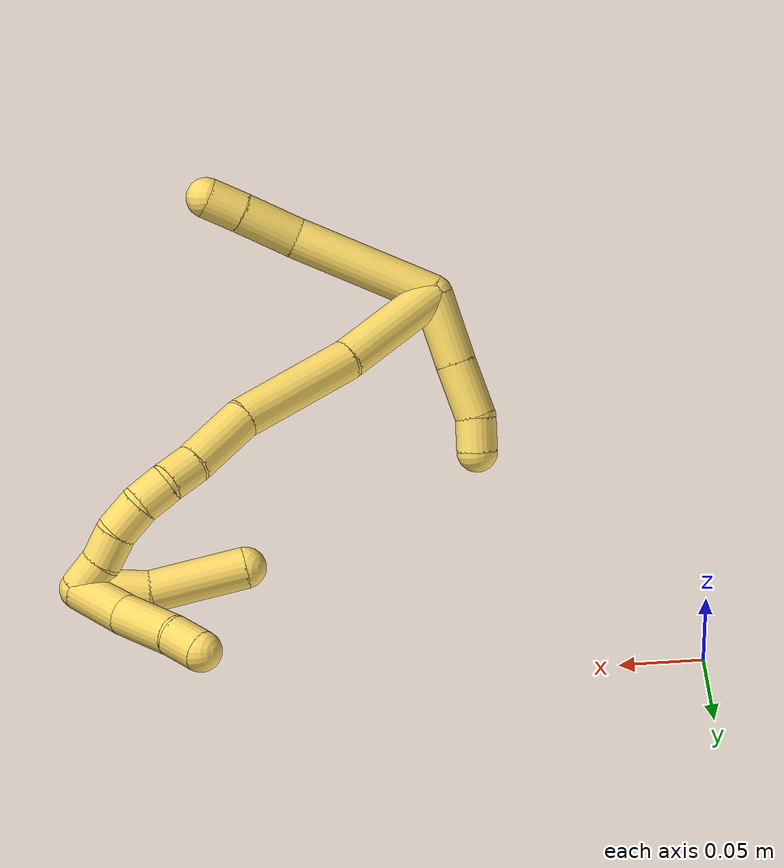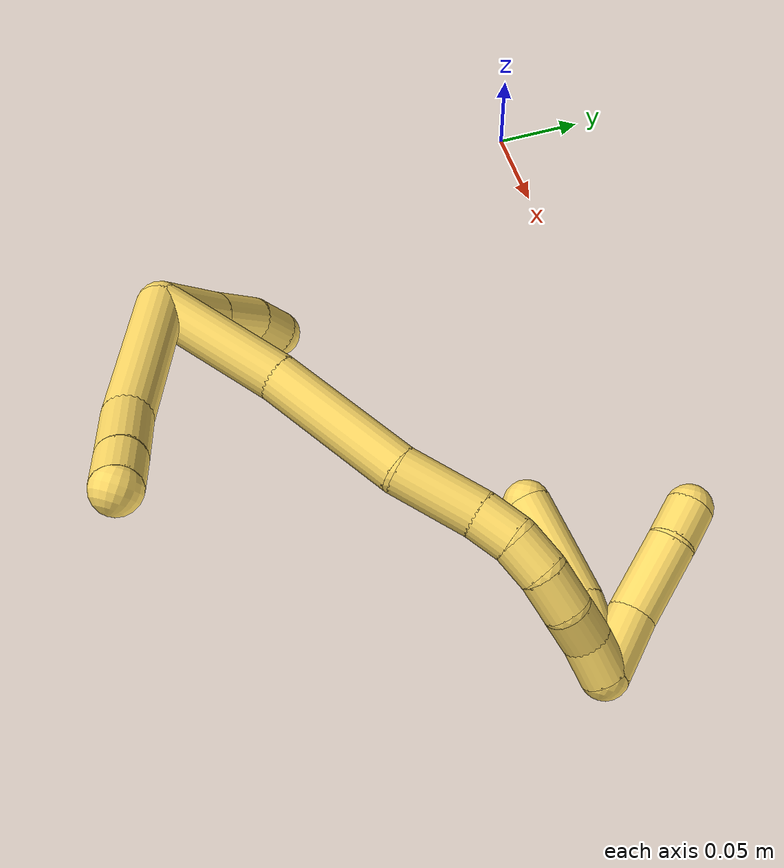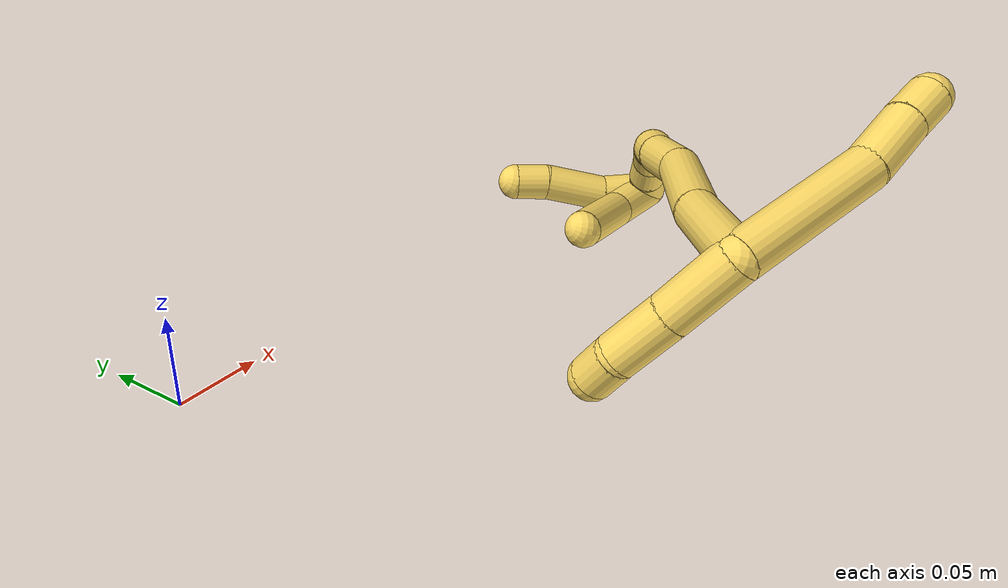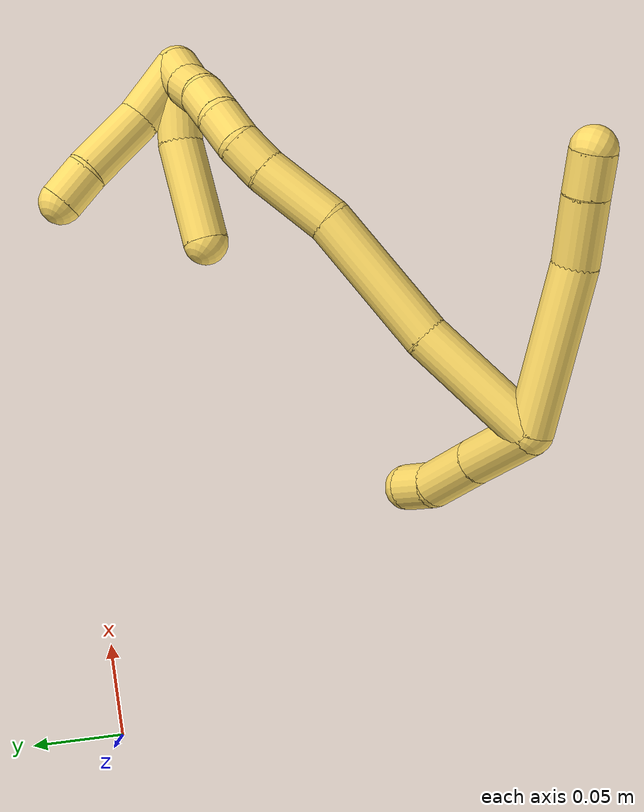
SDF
<sdf version="1.7">
 <world name="default">
  <model name="5">
   <static>0</static>
   <link name="5">
    <collision name="collision-cylinder-e_1_2_8">
     <pose>0.027618 -0.00882 -0.034468 2.89107 0.660091 2.43711</pose>
     <geometry><cylinder><radius>0.0125</radius><length>0.090079</length></cylinder></geometry>
     <surface>
      <friction><ode><mu>1.16</mu><mu2>1.16</mu2><slip1>0</slip1><slip2>0</slip2></ode></friction>
      <contact><ode><kp>1e+06</kp><kd>1</kd><max_vel>0</max_vel><min_depth>0.001</min_depth></ode></contact>
     </surface>
    </collision>
    <visual name="visual-cylinder-e_1_2_8">
     <pose>0.027618 -0.00882 -0.034468 2.89107 0.660091 2.43711</pose>
     <geometry><cylinder><radius>0.0125</radius><length>0.090079</length></cylinder></geometry>
     <material><ambient>1 0.858824 0.4 1</ambient></material>
    </visual>
    <collision name="collision-cylinder-e_2_8_9">
     <pose>0.069244 -0.020995 -0.080372 2.85632 0.865838 2.53902</pose>
     <geometry><cylinder><radius>0.0125</radius><length>0.036785</length></cylinder></geometry>
     <surface>
      <friction><ode><mu>1.16</mu><mu2>1.16</mu2><slip1>0</slip1><slip2>0</slip2></ode></friction>
      <contact><ode><kp>1e+06</kp><kd>1</kd><max_vel>0</max_vel><min_depth>0.001</min_depth></ode></contact>
     </surface>
    </collision>
    <visual name="visual-cylinder-e_2_8_9">
     <pose>0.069244 -0.020995 -0.080372 2.85632 0.865838 2.53902</pose>
     <geometry><cylinder><radius>0.0125</radius><length>0.036785</length></cylinder></geometry>
     <material><ambient>1 0.858824 0.4 1</ambient></material>
    </visual>
    <collision name="collision-cylinder-e_3_9_6">
     <pose>0.091697 -0.026358 -0.099455 2.88467 0.818317 2.56257</pose>
     <geometry><cylinder><radius>0.0125</radius><length>0.023136</length></cylinder></geometry>
     <surface>
      <friction><ode><mu>1.16</mu><mu2>1.16</mu2><slip1>0</slip1><slip2>0</slip2></ode></friction>
      <contact><ode><kp>1e+06</kp><kd>1</kd><max_vel>0</max_vel><min_depth>0.001</min_depth></ode></contact>
     </surface>
    </collision>
    <visual name="visual-cylinder-e_3_9_6">
     <pose>0.091697 -0.026358 -0.099455 2.88467 0.818317 2.56257</pose>
     <geometry><cylinder><radius>0.0125</radius><length>0.023136</length></cylinder></geometry>
     <material><ambient>1 0.858824 0.4 1</ambient></material>
    </visual>
    <collision name="collision-cylinder-e_1_2_10">
     <pose>-0.010423 0.018306 0.005761 -1.26591 -0.497542 0.368517</pose>
     <geometry><cylinder><radius>0.0125</radius><length>0.043677</length></cylinder></geometry>
     <surface>
      <friction><ode><mu>1.16</mu><mu2>1.16</mu2><slip1>0</slip1><slip2>0</slip2></ode></friction>
      <contact><ode><kp>1e+06</kp><kd>1</kd><max_vel>0</max_vel><min_depth>0.001</min_depth></ode></contact>
     </surface>
    </collision>
    <visual name="visual-cylinder-e_1_2_10">
     <pose>-0.010423 0.018306 0.005761 -1.26591 -0.497542 0.368517</pose>
     <geometry><cylinder><radius>0.0125</radius><length>0.043677</length></cylinder></geometry>
     <material><ambient>1 0.858824 0.4 1</ambient></material>
    </visual>
    <collision name="collision-cylinder-e_2_10_11">
     <pose>-0.029056 0.051115 0.016761 -1.22412 -0.489258 0.346952</pose>
     <geometry><cylinder><radius>0.0125</radius><length>0.034942</length></cylinder></geometry>
     <surface>
      <friction><ode><mu>1.16</mu><mu2>1.16</mu2><slip1>0</slip1><slip2>0</slip2></ode></friction>
      <contact><ode><kp>1e+06</kp><kd>1</kd><max_vel>0</max_vel><min_depth>0.001</min_depth></ode></contact>
     </surface>
    </collision>
    <visual name="visual-cylinder-e_2_10_11">
     <pose>-0.029056 0.051115 0.016761 -1.22412 -0.489258 0.346952</pose>
     <geometry><cylinder><radius>0.0125</radius><length>0.034942</length></cylinder></geometry>
     <material><ambient>1 0.858824 0.4 1</ambient></material>
    </visual>
    <collision name="collision-cylinder-e_3_11_5">
     <pose>-0.040995 0.075631 0.022398 -1.53115 -0.356131 0.342558</pose>
     <geometry><cylinder><radius>0.0125</radius><length>0.021381</length></cylinder></geometry>
     <surface>
      <friction><ode><mu>1.16</mu><mu2>1.16</mu2><slip1>0</slip1><slip2>0</slip2></ode></friction>
      <contact><ode><kp>1e+06</kp><kd>1</kd><max_vel>0</max_vel><min_depth>0.001</min_depth></ode></contact>
     </surface>
    </collision>
    <visual name="visual-cylinder-e_3_11_5">
     <pose>-0.040995 0.075631 0.022398 -1.53115 -0.356131 0.342558</pose>
     <geometry><cylinder><radius>0.0125</radius><length>0.021381</length></cylinder></geometry>
     <material><ambient>1 0.858824 0.4 1</ambient></material>
    </visual>
    <collision name="collision-cylinder-e_1_2_12">
     <pose>0.021828 0.027144 -0.010676 -1.94552 0.642456 -0.908711</pose>
     <geometry><cylinder><radius>0.0125</radius><length>0.072862</length></cylinder></geometry>
     <surface>
      <friction><ode><mu>1.16</mu><mu2>1.16</mu2><slip1>0</slip1><slip2>0</slip2></ode></friction>
      <contact><ode><kp>1e+06</kp><kd>1</kd><max_vel>0</max_vel><min_depth>0.001</min_depth></ode></contact>
     </surface>
    </collision>
    <visual name="visual-cylinder-e_1_2_12">
     <pose>0.021828 0.027144 -0.010676 -1.94552 0.642456 -0.908711</pose>
     <geometry><cylinder><radius>0.0125</radius><length>0.072862</length></cylinder></geometry>
     <material><ambient>1 0.858824 0.4 1</ambient></material>
    </visual>
    <collision name="collision-cylinder-e_2_12_13">
     <pose>0.068851 0.080395 -0.036578 -2.09877 0.694906 -1.125</pose>
     <geometry><cylinder><radius>0.0125</radius><length>0.078694</length></cylinder></geometry>
     <surface>
      <friction><ode><mu>1.16</mu><mu2>1.16</mu2><slip1>0</slip1><slip2>0</slip2></ode></friction>
      <contact><ode><kp>1e+06</kp><kd>1</kd><max_vel>0</max_vel><min_depth>0.001</min_depth></ode></contact>
     </surface>
    </collision>
    <visual name="visual-cylinder-e_2_12_13">
     <pose>0.068851 0.080395 -0.036578 -2.09877 0.694906 -1.125</pose>
     <geometry><cylinder><radius>0.0125</radius><length>0.078694</length></cylinder></geometry>
     <material><ambient>1 0.858824 0.4 1</ambient></material>
    </visual>
    <collision name="collision-cylinder-e_3_13_14">
     <pose>0.106068 0.123877 -0.057018 -1.86237 0.58529 -0.769615</pose>
     <geometry><cylinder><radius>0.0125</radius><length>0.043525</length></cylinder></geometry>
     <surface>
      <friction><ode><mu>1.16</mu><mu2>1.16</mu2><slip1>0</slip1><slip2>0</slip2></ode></friction>
      <contact><ode><kp>1e+06</kp><kd>1</kd><max_vel>0</max_vel><min_depth>0.001</min_depth></ode></contact>
     </surface>
    </collision>
    <visual name="visual-cylinder-e_3_13_14">
     <pose>0.106068 0.123877 -0.057018 -1.86237 0.58529 -0.769615</pose>
     <geometry><cylinder><radius>0.0125</radius><length>0.043525</length></cylinder></geometry>
     <material><ambient>1 0.858824 0.4 1</ambient></material>
    </visual>
    <collision name="collision-cylinder-e_4_14_15">
     <pose>0.124061 0.148965 -0.065911 -2.0158 0.609799 -0.925304</pose>
     <geometry><cylinder><radius>0.0125</radius><length>0.020849</length></cylinder></geometry>
     <surface>
      <friction><ode><mu>1.16</mu><mu2>1.16</mu2><slip1>0</slip1><slip2>0</slip2></ode></friction>
      <contact><ode><kp>1e+06</kp><kd>1</kd><max_vel>0</max_vel><min_depth>0.001</min_depth></ode></contact>
     </surface>
    </collision>
    <visual name="visual-cylinder-e_4_14_15">
     <pose>0.124061 0.148965 -0.065911 -2.0158 0.609799 -0.925304</pose>
     <geometry><cylinder><radius>0.0125</radius><length>0.020849</length></cylinder></geometry>
     <material><ambient>1 0.858824 0.4 1</ambient></material>
    </visual>
    <collision name="collision-cylinder-e_5_15_16">
     <pose>0.133531 0.164428 -0.075007 -2.18091 0.354512 -0.662285</pose>
     <geometry><cylinder><radius>0.0125</radius><length>0.020165</length></cylinder></geometry>
     <surface>
      <friction><ode><mu>1.16</mu><mu2>1.16</mu2><slip1>0</slip1><slip2>0</slip2></ode></friction>
      <contact><ode><kp>1e+06</kp><kd>1</kd><max_vel>0</max_vel><min_depth>0.001</min_depth></ode></contact>
     </surface>
    </collision>
    <visual name="visual-cylinder-e_5_15_16">
     <pose>0.133531 0.164428 -0.075007 -2.18091 0.354512 -0.662285</pose>
     <geometry><cylinder><radius>0.0125</radius><length>0.020165</length></cylinder></geometry>
     <material><ambient>1 0.858824 0.4 1</ambient></material>
    </visual>
    <collision name="collision-cylinder-e_6_16_17">
     <pose>0.137663 0.181124 -0.086679 -2.1809 0.057819 -0.110884</pose>
     <geometry><cylinder><radius>0.0125</radius><length>0.021867</length></cylinder></geometry>
     <surface>
      <friction><ode><mu>1.16</mu><mu2>1.16</mu2><slip1>0</slip1><slip2>0</slip2></ode></friction>
      <contact><ode><kp>1e+06</kp><kd>1</kd><max_vel>0</max_vel><min_depth>0.001</min_depth></ode></contact>
     </surface>
    </collision>
    <visual name="visual-cylinder-e_6_16_17">
     <pose>0.137663 0.181124 -0.086679 -2.1809 0.057819 -0.110884</pose>
     <geometry><cylinder><radius>0.0125</radius><length>0.021867</length></cylinder></geometry>
     <material><ambient>1 0.858824 0.4 1</ambient></material>
    </visual>
    <collision name="collision-cylinder-e_7_17_18">
     <pose>0.136415 0.198981 -0.097625 -2.05542 -0.184484 0.304126</pose>
     <geometry><cylinder><radius>0.0125</radius><length>0.020488</length></cylinder></geometry>
     <surface>
      <friction><ode><mu>1.16</mu><mu2>1.16</mu2><slip1>0</slip1><slip2>0</slip2></ode></friction>
      <contact><ode><kp>1e+06</kp><kd>1</kd><max_vel>0</max_vel><min_depth>0.001</min_depth></ode></contact>
     </surface>
    </collision>
    <visual name="visual-cylinder-e_7_17_18">
     <pose>0.136415 0.198981 -0.097625 -2.05542 -0.184484 0.304126</pose>
     <geometry><cylinder><radius>0.0125</radius><length>0.020488</length></cylinder></geometry>
     <material><ambient>1 0.858824 0.4 1</ambient></material>
    </visual>
    <collision name="collision-cylinder-e_8_18_1">
     <pose>0.133785 0.216448 -0.108821 -2.22079 -0.069758 0.140482</pose>
     <geometry><cylinder><radius>0.0125</radius><length>0.021549</length></cylinder></geometry>
     <surface>
      <friction><ode><mu>1.16</mu><mu2>1.16</mu2><slip1>0</slip1><slip2>0</slip2></ode></friction>
      <contact><ode><kp>1e+06</kp><kd>1</kd><max_vel>0</max_vel><min_depth>0.001</min_depth></ode></contact>
     </surface>
    </collision>
    <visual name="visual-cylinder-e_8_18_1">
     <pose>0.133785 0.216448 -0.108821 -2.22079 -0.069758 0.140482</pose>
     <geometry><cylinder><radius>0.0125</radius><length>0.021549</length></cylinder></geometry>
     <material><ambient>1 0.858824 0.4 1</ambient></material>
    </visual>
    <collision name="collision-cylinder-e_1_1_19">
     <pose>0.129997 0.231067 -0.099085 -0.357308 -0.17344 0.031396</pose>
     <geometry><cylinder><radius>0.0125</radius><length>0.035198</length></cylinder></geometry>
     <surface>
      <friction><ode><mu>1.16</mu><mu2>1.16</mu2><slip1>0</slip1><slip2>0</slip2></ode></friction>
      <contact><ode><kp>1e+06</kp><kd>1</kd><max_vel>0</max_vel><min_depth>0.001</min_depth></ode></contact>
     </surface>
    </collision>
    <visual name="visual-cylinder-e_1_1_19">
     <pose>0.129997 0.231067 -0.099085 -0.357308 -0.17344 0.031396</pose>
     <geometry><cylinder><radius>0.0125</radius><length>0.035198</length></cylinder></geometry>
     <material><ambient>1 0.858824 0.4 1</ambient></material>
    </visual>
    <collision name="collision-cylinder-e_2_19_20">
     <pose>0.128474 0.242505 -0.0623 -0.25587 0.071186 -0.009161</pose>
     <geometry><cylinder><radius>0.0125</radius><length>0.04258</length></cylinder></geometry>
     <surface>
      <friction><ode><mu>1.16</mu><mu2>1.16</mu2><slip1>0</slip1><slip2>0</slip2></ode></friction>
      <contact><ode><kp>1e+06</kp><kd>1</kd><max_vel>0</max_vel><min_depth>0.001</min_depth></ode></contact>
     </surface>
    </collision>
    <visual name="visual-cylinder-e_2_19_20">
     <pose>0.128474 0.242505 -0.0623 -0.25587 0.071186 -0.009161</pose>
     <geometry><cylinder><radius>0.0125</radius><length>0.04258</length></cylinder></geometry>
     <material><ambient>1 0.858824 0.4 1</ambient></material>
    </visual>
    <collision name="collision-cylinder-e_3_20_4">
     <pose>0.12892 0.251642 -0.031356 -0.347122 -0.096289 0.016894</pose>
     <geometry><cylinder><radius>0.0125</radius><length>0.022222</length></cylinder></geometry>
     <surface>
      <friction><ode><mu>1.16</mu><mu2>1.16</mu2><slip1>0</slip1><slip2>0</slip2></ode></friction>
      <contact><ode><kp>1e+06</kp><kd>1</kd><max_vel>0</max_vel><min_depth>0.001</min_depth></ode></contact>
     </surface>
    </collision>
    <visual name="visual-cylinder-e_3_20_4">
     <pose>0.12892 0.251642 -0.031356 -0.347122 -0.096289 0.016894</pose>
     <geometry><cylinder><radius>0.0125</radius><length>0.022222</length></cylinder></geometry>
     <material><ambient>1 0.858824 0.4 1</ambient></material>
    </visual>
    <collision name="collision-cylinder-e_1_1_21">
     <pose>0.120661 0.221679 -0.098977 0.200683 -0.638118 -0.066494</pose>
     <geometry><cylinder><radius>0.0125</radius><length>0.041541</length></cylinder></geometry>
     <surface>
      <friction><ode><mu>1.16</mu><mu2>1.16</mu2><slip1>0</slip1><slip2>0</slip2></ode></friction>
      <contact><ode><kp>1e+06</kp><kd>1</kd><max_vel>0</max_vel><min_depth>0.001</min_depth></ode></contact>
     </surface>
    </collision>
    <visual name="visual-cylinder-e_1_1_21">
     <pose>0.120661 0.221679 -0.098977 0.200683 -0.638118 -0.066494</pose>
     <geometry><cylinder><radius>0.0125</radius><length>0.041541</length></cylinder></geometry>
     <material><ambient>1 0.858824 0.4 1</ambient></material>
    </visual>
    <collision name="collision-cylinder-e_2_21_3">
     <pose>0.092907 0.205839 -0.061153 0.527619 -0.554167 -0.153334</pose>
     <geometry><cylinder><radius>0.0125</radius><length>0.058459</length></cylinder></geometry>
     <surface>
      <friction><ode><mu>1.16</mu><mu2>1.16</mu2><slip1>0</slip1><slip2>0</slip2></ode></friction>
      <contact><ode><kp>1e+06</kp><kd>1</kd><max_vel>0</max_vel><min_depth>0.001</min_depth></ode></contact>
     </surface>
    </collision>
    <visual name="visual-cylinder-e_2_21_3">
     <pose>0.092907 0.205839 -0.061153 0.527619 -0.554167 -0.153334</pose>
     <geometry><cylinder><radius>0.0125</radius><length>0.058459</length></cylinder></geometry>
     <material><ambient>1 0.858824 0.4 1</ambient></material>
    </visual>
    <collision name="collision-sphere-3">
     <pose>0.077526 0.193325 -0.039678 0 -0 0</pose>
     <geometry><sphere><radius>0.0125</radius></sphere></geometry>
     <surface>
      <friction><ode><mu>1.16</mu><mu2>1.16</mu2><slip1>0</slip1><slip2>0</slip2></ode></friction>
      <contact><ode><kp>1e+06</kp><kd>1</kd><max_vel>0</max_vel><min_depth>0.001</min_depth></ode></contact>
     </surface>
    </collision>
    <visual name="visual-sphere-3">
     <pose>0.077526 0.193325 -0.039678 0 -0 0</pose>
     <geometry><sphere><radius>0.0125</radius></sphere></geometry>
     <material><ambient>1 0.858824 0.4 1</ambient></material>
    </visual>
    <collision name="collision-sphere-21">
     <pose>0.108289 0.218353 -0.082628 0 -0 0</pose>
     <geometry><sphere><radius>0.0125</radius></sphere></geometry>
     <surface>
      <friction><ode><mu>1.16</mu><mu2>1.16</mu2><slip1>0</slip1><slip2>0</slip2></ode></friction>
      <contact><ode><kp>1e+06</kp><kd>1</kd><max_vel>0</max_vel><min_depth>0.001</min_depth></ode></contact>
     </surface>
    </collision>
    <visual name="visual-sphere-21">
     <pose>0.108289 0.218353 -0.082628 0 -0 0</pose>
     <geometry><sphere><radius>0.0125</radius></sphere></geometry>
     <material><ambient>1 0.858824 0.4 1</ambient></material>
    </visual>
    <collision name="collision-sphere-4">
     <pose>0.127852 0.255404 -0.020956 0 -0 0</pose>
     <geometry><sphere><radius>0.0125</radius></sphere></geometry>
     <surface>
      <friction><ode><mu>1.16</mu><mu2>1.16</mu2><slip1>0</slip1><slip2>0</slip2></ode></friction>
      <contact><ode><kp>1e+06</kp><kd>1</kd><max_vel>0</max_vel><min_depth>0.001</min_depth></ode></contact>
     </surface>
    </collision>
    <visual name="visual-sphere-4">
     <pose>0.127852 0.255404 -0.020956 0 -0 0</pose>
     <geometry><sphere><radius>0.0125</radius></sphere></geometry>
     <material><ambient>1 0.858824 0.4 1</ambient></material>
    </visual>
    <collision name="collision-sphere-20">
     <pose>0.129988 0.247879 -0.041756 0 -0 0</pose>
     <geometry><sphere><radius>0.0125</radius></sphere></geometry>
     <surface>
      <friction><ode><mu>1.16</mu><mu2>1.16</mu2><slip1>0</slip1><slip2>0</slip2></ode></friction>
      <contact><ode><kp>1e+06</kp><kd>1</kd><max_vel>0</max_vel><min_depth>0.001</min_depth></ode></contact>
     </surface>
    </collision>
    <visual name="visual-sphere-20">
     <pose>0.129988 0.247879 -0.041756 0 -0 0</pose>
     <geometry><sphere><radius>0.0125</radius></sphere></geometry>
     <material><ambient>1 0.858824 0.4 1</ambient></material>
    </visual>
    <collision name="collision-sphere-11">
     <pose>-0.037267 0.065619 0.022001 0 -0 0</pose>
     <geometry><sphere><radius>0.0125</radius></sphere></geometry>
     <surface>
      <friction><ode><mu>1.16</mu><mu2>1.16</mu2><slip1>0</slip1><slip2>0</slip2></ode></friction>
      <contact><ode><kp>1e+06</kp><kd>1</kd><max_vel>0</max_vel><min_depth>0.001</min_depth></ode></contact>
     </surface>
    </collision>
    <visual name="visual-sphere-11">
     <pose>-0.037267 0.065619 0.022001 0 -0 0</pose>
     <geometry><sphere><radius>0.0125</radius></sphere></geometry>
     <material><ambient>1 0.858824 0.4 1</ambient></material>
    </visual>
    <collision name="collision-sphere-10">
     <pose>-0.020845 0.036611 0.011521 0 -0 0</pose>
     <geometry><sphere><radius>0.0125</radius></sphere></geometry>
     <surface>
      <friction><ode><mu>1.16</mu><mu2>1.16</mu2><slip1>0</slip1><slip2>0</slip2></ode></friction>
      <contact><ode><kp>1e+06</kp><kd>1</kd><max_vel>0</max_vel><min_depth>0.001</min_depth></ode></contact>
     </surface>
    </collision>
    <visual name="visual-sphere-10">
     <pose>-0.020845 0.036611 0.011521 0 -0 0</pose>
     <geometry><sphere><radius>0.0125</radius></sphere></geometry>
     <material><ambient>1 0.858824 0.4 1</ambient></material>
    </visual>
    <collision name="collision-sphere-6">
     <pose>0.100141 -0.028367 -0.107102 0 -0 0</pose>
     <geometry><sphere><radius>0.0125</radius></sphere></geometry>
     <surface>
      <friction><ode><mu>1.16</mu><mu2>1.16</mu2><slip1>0</slip1><slip2>0</slip2></ode></friction>
      <contact><ode><kp>1e+06</kp><kd>1</kd><max_vel>0</max_vel><min_depth>0.001</min_depth></ode></contact>
     </surface>
    </collision>
    <visual name="visual-sphere-6">
     <pose>0.100141 -0.028367 -0.107102 0 -0 0</pose>
     <geometry><sphere><radius>0.0125</radius></sphere></geometry>
     <material><ambient>1 0.858824 0.4 1</ambient></material>
    </visual>
    <collision name="collision-sphere-9">
     <pose>0.083252 -0.024349 -0.091808 0 -0 0</pose>
     <geometry><sphere><radius>0.0125</radius></sphere></geometry>
     <surface>
      <friction><ode><mu>1.16</mu><mu2>1.16</mu2><slip1>0</slip1><slip2>0</slip2></ode></friction>
      <contact><ode><kp>1e+06</kp><kd>1</kd><max_vel>0</max_vel><min_depth>0.001</min_depth></ode></contact>
     </surface>
    </collision>
    <visual name="visual-sphere-9">
     <pose>0.083252 -0.024349 -0.091808 0 -0 0</pose>
     <geometry><sphere><radius>0.0125</radius></sphere></geometry>
     <material><ambient>1 0.858824 0.4 1</ambient></material>
    </visual>
    <collision name="collision-sphere-2">
     <geometry><sphere><radius>0.0125</radius></sphere></geometry>
     <surface>
      <friction><ode><mu>1.16</mu><mu2>1.16</mu2><slip1>0</slip1><slip2>0</slip2></ode></friction>
      <contact><ode><kp>1e+06</kp><kd>1</kd><max_vel>0</max_vel><min_depth>0.001</min_depth></ode></contact>
     </surface>
    </collision>
    <visual name="visual-sphere-2">
     <geometry><sphere><radius>0.0125</radius></sphere></geometry>
     <material><ambient>1 0.858824 0.4 1</ambient></material>
    </visual>
    <collision name="collision-sphere-19">
     <pose>0.12696 0.23713 -0.082845 0 -0 0</pose>
     <geometry><sphere><radius>0.0125</radius></sphere></geometry>
     <surface>
      <friction><ode><mu>1.16</mu><mu2>1.16</mu2><slip1>0</slip1><slip2>0</slip2></ode></friction>
      <contact><ode><kp>1e+06</kp><kd>1</kd><max_vel>0</max_vel><min_depth>0.001</min_depth></ode></contact>
     </surface>
    </collision>
    <visual name="visual-sphere-19">
     <pose>0.12696 0.23713 -0.082845 0 -0 0</pose>
     <geometry><sphere><radius>0.0125</radius></sphere></geometry>
     <material><ambient>1 0.858824 0.4 1</ambient></material>
    </visual>
    <collision name="collision-sphere-8">
     <pose>0.055235 -0.017641 -0.068935 0 -0 0</pose>
     <geometry><sphere><radius>0.0125</radius></sphere></geometry>
     <surface>
      <friction><ode><mu>1.16</mu><mu2>1.16</mu2><slip1>0</slip1><slip2>0</slip2></ode></friction>
      <contact><ode><kp>1e+06</kp><kd>1</kd><max_vel>0</max_vel><min_depth>0.001</min_depth></ode></contact>
     </surface>
    </collision>
    <visual name="visual-sphere-8">
     <pose>0.055235 -0.017641 -0.068935 0 -0 0</pose>
     <geometry><sphere><radius>0.0125</radius></sphere></geometry>
     <material><ambient>1 0.858824 0.4 1</ambient></material>
    </visual>
    <collision name="collision-sphere-5">
     <pose>-0.044722 0.085643 0.022795 0 -0 0</pose>
     <geometry><sphere><radius>0.0125</radius></sphere></geometry>
     <surface>
      <friction><ode><mu>1.16</mu><mu2>1.16</mu2><slip1>0</slip1><slip2>0</slip2></ode></friction>
      <contact><ode><kp>1e+06</kp><kd>1</kd><max_vel>0</max_vel><min_depth>0.001</min_depth></ode></contact>
     </surface>
    </collision>
    <visual name="visual-sphere-5">
     <pose>-0.044722 0.085643 0.022795 0 -0 0</pose>
     <geometry><sphere><radius>0.0125</radius></sphere></geometry>
     <material><ambient>1 0.858824 0.4 1</ambient></material>
    </visual>
    <collision name="collision-sphere-12">
     <pose>0.043657 0.054288 -0.021352 0 -0 0</pose>
     <geometry><sphere><radius>0.0125</radius></sphere></geometry>
     <surface>
      <friction><ode><mu>1.16</mu><mu2>1.16</mu2><slip1>0</slip1><slip2>0</slip2></ode></friction>
      <contact><ode><kp>1e+06</kp><kd>1</kd><max_vel>0</max_vel><min_depth>0.001</min_depth></ode></contact>
     </surface>
    </collision>
    <visual name="visual-sphere-12">
     <pose>0.043657 0.054288 -0.021352 0 -0 0</pose>
     <geometry><sphere><radius>0.0125</radius></sphere></geometry>
     <material><ambient>1 0.858824 0.4 1</ambient></material>
    </visual>
    <collision name="collision-sphere-13">
     <pose>0.094045 0.106503 -0.051804 0 -0 0</pose>
     <geometry><sphere><radius>0.0125</radius></sphere></geometry>
     <surface>
      <friction><ode><mu>1.16</mu><mu2>1.16</mu2><slip1>0</slip1><slip2>0</slip2></ode></friction>
      <contact><ode><kp>1e+06</kp><kd>1</kd><max_vel>0</max_vel><min_depth>0.001</min_depth></ode></contact>
     </surface>
    </collision>
    <visual name="visual-sphere-13">
     <pose>0.094045 0.106503 -0.051804 0 -0 0</pose>
     <geometry><sphere><radius>0.0125</radius></sphere></geometry>
     <material><ambient>1 0.858824 0.4 1</ambient></material>
    </visual>
    <collision name="collision-sphere-14">
     <pose>0.118091 0.141252 -0.062233 0 -0 0</pose>
     <geometry><sphere><radius>0.0125</radius></sphere></geometry>
     <surface>
      <friction><ode><mu>1.16</mu><mu2>1.16</mu2><slip1>0</slip1><slip2>0</slip2></ode></friction>
      <contact><ode><kp>1e+06</kp><kd>1</kd><max_vel>0</max_vel><min_depth>0.001</min_depth></ode></contact>
     </surface>
    </collision>
    <visual name="visual-sphere-14">
     <pose>0.118091 0.141252 -0.062233 0 -0 0</pose>
     <geometry><sphere><radius>0.0125</radius></sphere></geometry>
     <material><ambient>1 0.858824 0.4 1</ambient></material>
    </visual>
    <collision name="collision-sphere-15">
     <pose>0.130031 0.156678 -0.06959 0 -0 0</pose>
     <geometry><sphere><radius>0.0125</radius></sphere></geometry>
     <surface>
      <friction><ode><mu>1.16</mu><mu2>1.16</mu2><slip1>0</slip1><slip2>0</slip2></ode></friction>
      <contact><ode><kp>1e+06</kp><kd>1</kd><max_vel>0</max_vel><min_depth>0.001</min_depth></ode></contact>
     </surface>
    </collision>
    <visual name="visual-sphere-15">
     <pose>0.130031 0.156678 -0.06959 0 -0 0</pose>
     <geometry><sphere><radius>0.0125</radius></sphere></geometry>
     <material><ambient>1 0.858824 0.4 1</ambient></material>
    </visual>
    <collision name="collision-sphere-16">
     <pose>0.137031 0.172178 -0.080425 0 -0 0</pose>
     <geometry><sphere><radius>0.0125</radius></sphere></geometry>
     <surface>
      <friction><ode><mu>1.16</mu><mu2>1.16</mu2><slip1>0</slip1><slip2>0</slip2></ode></friction>
      <contact><ode><kp>1e+06</kp><kd>1</kd><max_vel>0</max_vel><min_depth>0.001</min_depth></ode></contact>
     </surface>
    </collision>
    <visual name="visual-sphere-16">
     <pose>0.137031 0.172178 -0.080425 0 -0 0</pose>
     <geometry><sphere><radius>0.0125</radius></sphere></geometry>
     <material><ambient>1 0.858824 0.4 1</ambient></material>
    </visual>
    <collision name="collision-sphere-17">
     <pose>0.138294 0.19007 -0.092933 0 -0 0</pose>
     <geometry><sphere><radius>0.0125</radius></sphere></geometry>
     <surface>
      <friction><ode><mu>1.16</mu><mu2>1.16</mu2><slip1>0</slip1><slip2>0</slip2></ode></friction>
      <contact><ode><kp>1e+06</kp><kd>1</kd><max_vel>0</max_vel><min_depth>0.001</min_depth></ode></contact>
     </surface>
    </collision>
    <visual name="visual-sphere-17">
     <pose>0.138294 0.19007 -0.092933 0 -0 0</pose>
     <geometry><sphere><radius>0.0125</radius></sphere></geometry>
     <material><ambient>1 0.858824 0.4 1</ambient></material>
    </visual>
    <collision name="collision-sphere-18">
     <pose>0.134536 0.207892 -0.102316 0 -0 0</pose>
     <geometry><sphere><radius>0.0125</radius></sphere></geometry>
     <surface>
      <friction><ode><mu>1.16</mu><mu2>1.16</mu2><slip1>0</slip1><slip2>0</slip2></ode></friction>
      <contact><ode><kp>1e+06</kp><kd>1</kd><max_vel>0</max_vel><min_depth>0.001</min_depth></ode></contact>
     </surface>
    </collision>
    <visual name="visual-sphere-18">
     <pose>0.134536 0.207892 -0.102316 0 -0 0</pose>
     <geometry><sphere><radius>0.0125</radius></sphere></geometry>
     <material><ambient>1 0.858824 0.4 1</ambient></material>
    </visual>
    <collision name="collision-sphere-1">
     <pose>0.133034 0.225004 -0.115325 0 -0 0</pose>
     <geometry><sphere><radius>0.0125</radius></sphere></geometry>
     <surface>
      <friction><ode><mu>1.16</mu><mu2>1.16</mu2><slip1>0</slip1><slip2>0</slip2></ode></friction>
      <contact><ode><kp>1e+06</kp><kd>1</kd><max_vel>0</max_vel><min_depth>0.001</min_depth></ode></contact>
     </surface>
    </collision>
    <visual name="visual-sphere-1">
     <pose>0.133034 0.225004 -0.115325 0 -0 0</pose>
     <geometry><sphere><radius>0.0125</radius></sphere></geometry>
     <material><ambient>1 0.858824 0.4 1</ambient></material>
    </visual>
    <inertial>
     <pose>0.071675 0.106851 -0.049113 0 -0 0</pose>
     <mass>0.75</mass>
     <inertia>
      <ixx>3.9e-05</ixx>
      <ixy>0</ixy>
      <ixz>0</ixz>
      <iyy>0.000125</iyy>
      <iyz>0</iyz>
      <izz>-0.000143</izz>
     </inertia>
    </inertial>
   </link>
   <pose>0.137391 -0.237033 0.091093 -1.01475 -0.813313 0.535689</pose>
  </model>
 </world>
</sdf>
